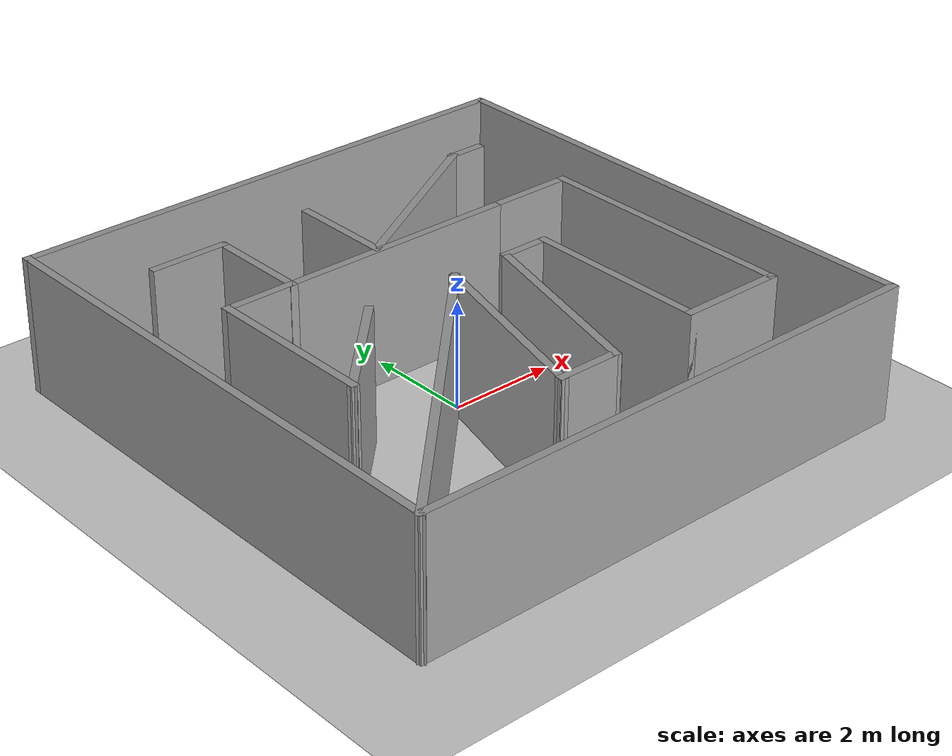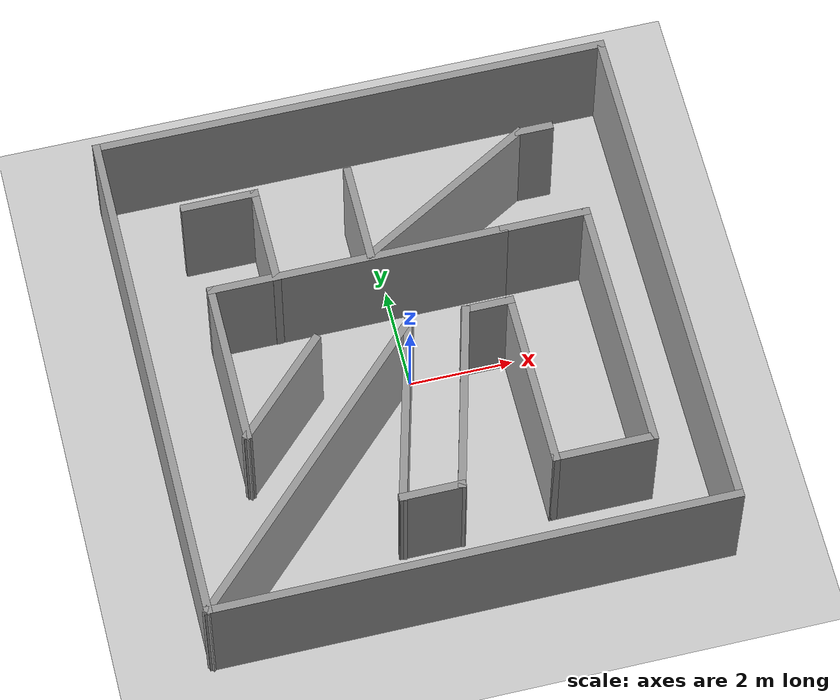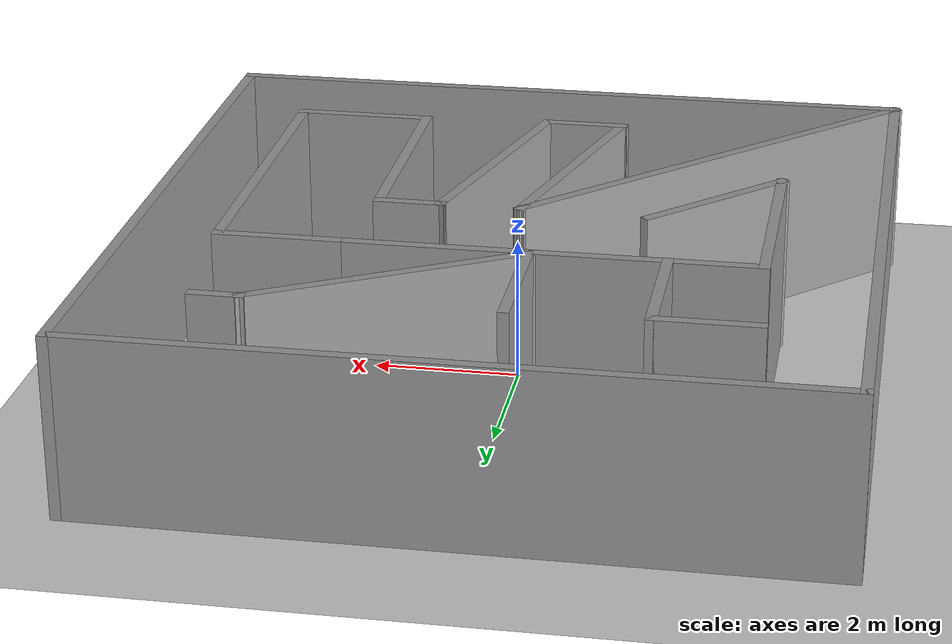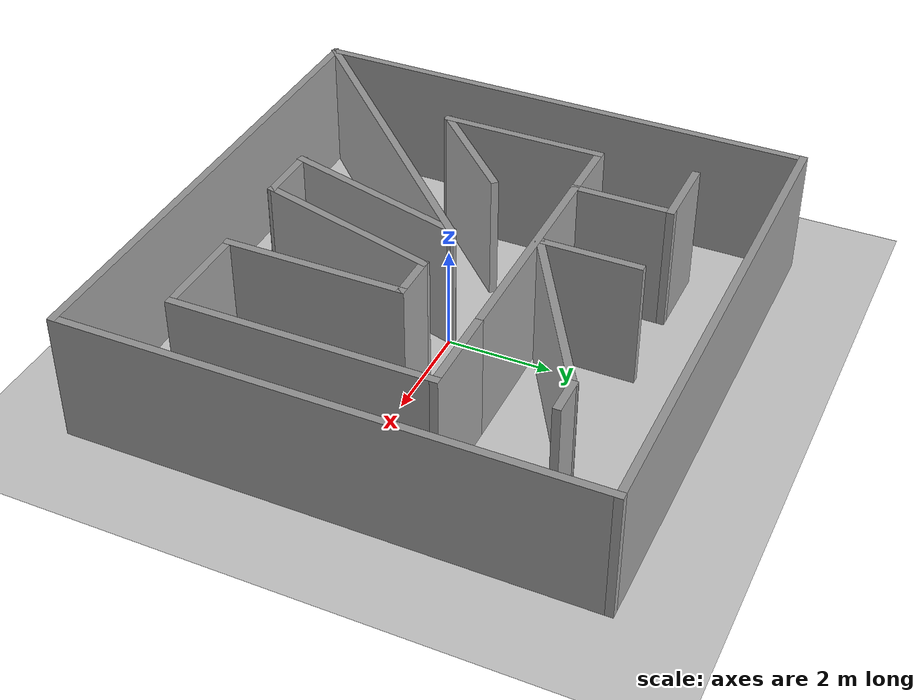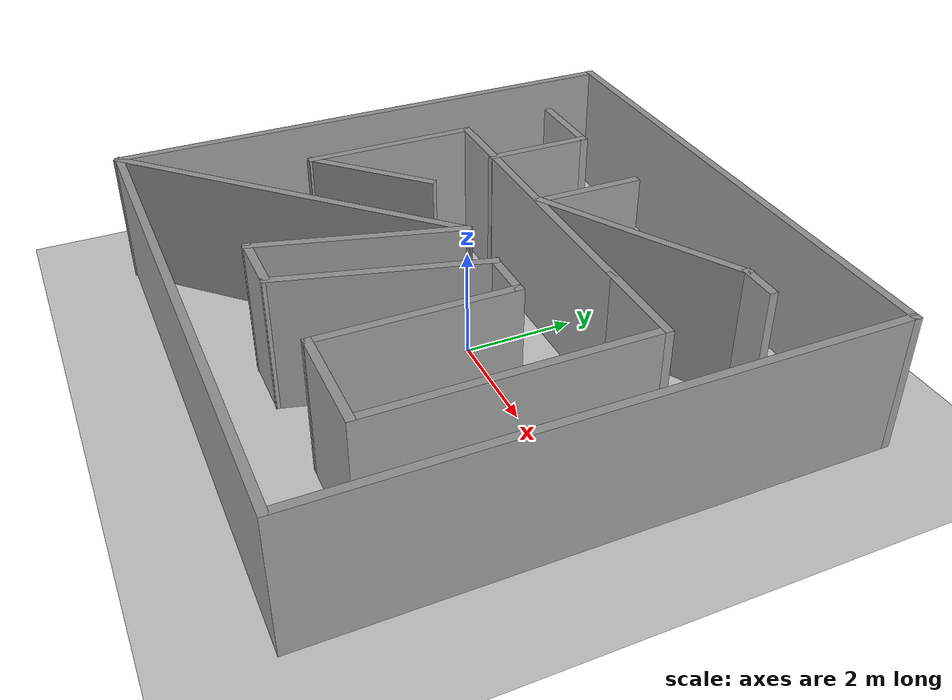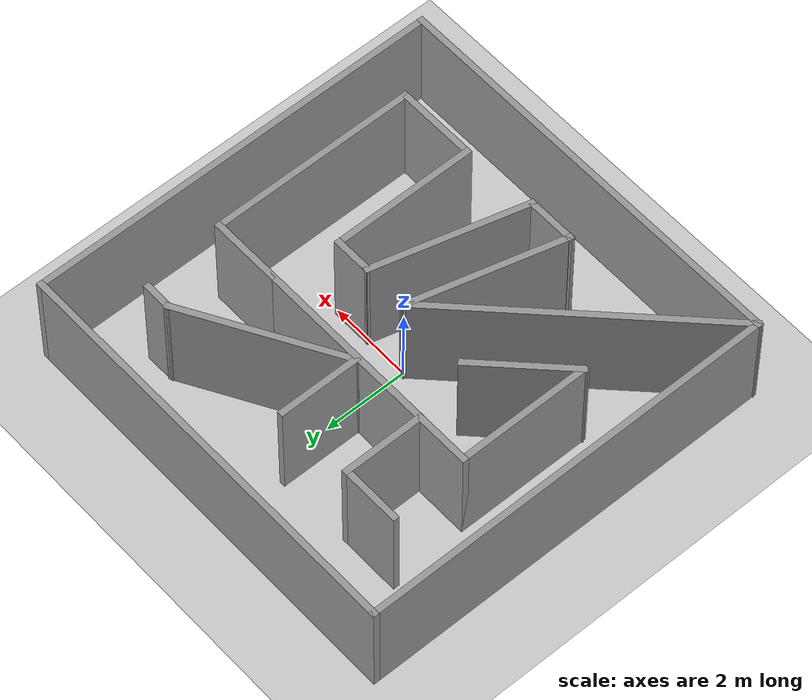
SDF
<sdf version="1.7">
 <world name="default">
  <light name="sun" type="directional">
   <pose>0 0 10 0 -0 0</pose>
   <diffuse>0.8 0.8 0.8 1</diffuse>
   <specular>0.2 0.2 0.2 1</specular>
   <attenuation>
    <range>1000</range>
    <constant>0.9</constant>
    <linear>0.01</linear>
    <quadratic>0.001</quadratic>
   </attenuation>
   <direction>-0.5 0.1 -0.9</direction>
   <spot><inner_angle>0</inner_angle><outer_angle>0</outer_angle><falloff>0</falloff></spot>
  </light>
  <model name="ground_plane">
   <static>1</static>
   <link name="link">
    <collision name="collision">
     <geometry><plane><normal>0 0 1</normal><size>100 100</size></plane></geometry>
     <surface>
      <contact><collide_bitmask>65535</collide_bitmask></contact>
      <friction><ode><mu>100</mu><mu2>50</mu2></ode></friction>
     </surface>
    </collision>
    <visual name="visual">
     <cast_shadows>0</cast_shadows>
     <geometry><plane><normal>0 0 1</normal><size>100 100</size></plane></geometry>
     <material>
      <script><uri>file://media/materials/scripts/gazebo.material</uri><name>Gazebo/Grey</name></script>
     </material>
    </visual>
   </link>
  </model>
  <gravity>0 0 -9.8</gravity>
  <magnetic_field>6e-06 2.3e-05 -4.2e-05</magnetic_field>
  <atmosphere type="adiabatic"/>
  <physics type="ode">
   <max_step_size>0.001</max_step_size>
   <real_time_factor>1</real_time_factor>
   <real_time_update_rate>1000</real_time_update_rate>
  </physics>
  <scene><ambient>0.4 0.4 0.4 1</ambient><background>0.7 0.7 0.7 1</background><shadows>1</shadows></scene>
  <spherical_coordinates>
   <surface_model>EARTH_WGS84</surface_model>
   <latitude_deg>0</latitude_deg>
   <longitude_deg>0</longitude_deg>
   <elevation>0</elevation>
   <heading_deg>0</heading_deg>
  </spherical_coordinates>
  <model name="krishna">
   <pose>0.025832 0.074394 0 0 -0 0</pose>
   <link name="Wall_0">
    <collision name="Wall_0_Collision">
     <geometry><box><size>10 0.15 2.5</size></box></geometry>
     <pose>0 0 1.25 0 -0 0</pose>
    </collision>
    <visual name="Wall_0_Visual">
     <pose>0 0 1.25 0 -0 0</pose>
     <geometry><box><size>10 0.15 2.5</size></box></geometry>
     <material>
      <script><uri>file://media/materials/scripts/gazebo.material</uri><name>Gazebo/Grey</name></script>
      <ambient>1 1 1 1</ambient>
     </material>
     <meta><layer>0</layer></meta>
    </visual>
    <pose>0.015533 -4.90947 0 0 -0 0</pose>
   </link>
   <link name="Wall_1">
    <collision name="Wall_1_Collision">
     <geometry><box><size>10 0.15 2.5</size></box></geometry>
     <pose>0 0 1.25 0 -0 0</pose>
    </collision>
    <visual name="Wall_1_Visual">
     <pose>0 0 1.25 0 -0 0</pose>
     <geometry><box><size>10 0.15 2.5</size></box></geometry>
     <material>
      <script><uri>file://media/materials/scripts/gazebo.material</uri><name>Gazebo/Grey</name></script>
      <ambient>1 1 1 1</ambient>
     </material>
     <meta><layer>0</layer></meta>
    </visual>
    <pose>4.94053 0.015533 0 0 -0 1.5708</pose>
   </link>
   <link name="Wall_10">
    <collision name="Wall_10_Collision">
     <geometry><box><size>3.5 0.15 2.5</size></box></geometry>
     <pose>0 0 1.25 0 -0 0</pose>
    </collision>
    <visual name="Wall_10_Visual">
     <pose>0 0 1.25 0 -0 0</pose>
     <geometry><box><size>3.5 0.15 2.5</size></box></geometry>
     <material>
      <script><uri>file://media/materials/scripts/gazebo.material</uri><name>Gazebo/Grey</name></script>
      <ambient>1 1 1 1</ambient>
     </material>
     <meta><layer>0</layer></meta>
    </visual>
    <pose>1.88421 -1.74079 0 0 -0 -1.5708</pose>
   </link>
   <link name="Wall_11">
    <collision name="Wall_11_Collision">
     <geometry><box><size>2 0.15 2.5</size></box></geometry>
     <pose>0 0 1.25 0 -0 0</pose>
    </collision>
    <visual name="Wall_11_Visual">
     <pose>0 0 1.25 0 -0 0</pose>
     <geometry><box><size>2 0.15 2.5</size></box></geometry>
     <material>
      <script><uri>file://media/materials/scripts/gazebo.material</uri><name>Gazebo/Grey</name></script>
      <ambient>1 1 1 1</ambient>
     </material>
     <meta><layer>0</layer></meta>
    </visual>
    <pose>2.80921 -3.41579 0 0 -0 0</pose>
   </link>
   <link name="Wall_12">
    <collision name="Wall_12_Collision">
     <geometry><box><size>5 0.15 2.5</size></box></geometry>
     <pose>0 0 1.25 0 -0 0</pose>
    </collision>
    <visual name="Wall_12_Visual">
     <pose>0 0 1.25 0 -0 0</pose>
     <geometry><box><size>5 0.15 2.5</size></box></geometry>
     <material>
      <script><uri>file://media/materials/scripts/gazebo.material</uri><name>Gazebo/Grey</name></script>
      <ambient>1 1 1 1</ambient>
     </material>
     <meta><layer>0</layer></meta>
    </visual>
    <pose>3.73421 -0.990785 0 0 -0 1.5708</pose>
   </link>
   <link name="Wall_13">
    <collision name="Wall_13_Collision">
     <geometry><box><size>1.75 0.15 2.5</size></box></geometry>
     <pose>0 0 1.25 0 -0 0</pose>
    </collision>
    <visual name="Wall_13_Visual">
     <pose>0 0 1.25 0 -0 0</pose>
     <geometry><box><size>1.75 0.15 2.5</size></box></geometry>
     <material>
      <script><uri>file://media/materials/scripts/gazebo.material</uri><name>Gazebo/Grey</name></script>
      <ambient>1 1 1 1</ambient>
     </material>
     <meta><layer>0</layer></meta>
    </visual>
    <pose>2.93421 1.43422 0 0 -0 3.14159</pose>
   </link>
   <link name="Wall_14">
    <collision name="Wall_14_Collision">
     <geometry><box><size>5.75 0.15 2.5</size></box></geometry>
     <pose>0 0 1.25 0 -0 0</pose>
    </collision>
    <visual name="Wall_14_Visual">
     <pose>0 0 1.25 0 -0 0</pose>
     <geometry><box><size>5.75 0.15 2.5</size></box></geometry>
     <material>
      <script><uri>file://media/materials/scripts/gazebo.material</uri><name>Gazebo/Grey</name></script>
      <ambient>1 1 1 1</ambient>
     </material>
     <meta><layer>0</layer></meta>
    </visual>
    <pose>-0.665786 1.43422 0 0 -0 3.14159</pose>
   </link>
   <link name="Wall_15">
    <collision name="Wall_15_Collision">
     <geometry><box><size>3.25 0.15 2.5</size></box></geometry>
     <pose>0 0 1.25 0 -0 0</pose>
    </collision>
    <visual name="Wall_15_Visual">
     <pose>0 0 1.25 0 -0 0</pose>
     <geometry><box><size>3.25 0.15 2.5</size></box></geometry>
     <material>
      <script><uri>file://media/materials/scripts/gazebo.material</uri><name>Gazebo/Grey</name></script>
      <ambient>1 1 1 1</ambient>
     </material>
     <meta><layer>0</layer></meta>
    </visual>
    <pose>-3.46579 -0.115785 0 0 -0 -1.5708</pose>
   </link>
   <link name="Wall_16">
    <collision name="Wall_16_Collision">
     <geometry><box><size>2.5 0.15 2.5</size></box></geometry>
     <pose>0 0 1.25 0 -0 0</pose>
    </collision>
    <visual name="Wall_16_Visual">
     <pose>0 0 1.25 0 -0 0</pose>
     <geometry><box><size>2.5 0.15 2.5</size></box></geometry>
     <material>
      <script><uri>file://media/materials/scripts/gazebo.material</uri><name>Gazebo/Grey</name></script>
      <ambient>1 1 1 1</ambient>
     </material>
     <meta><layer>0</layer></meta>
    </visual>
    <pose>-2.63494 -0.834935 0 0 -0 0.785398</pose>
   </link>
   <link name="Wall_18">
    <collision name="Wall_18_Collision">
     <geometry><box><size>2 0.15 2.5</size></box></geometry>
     <pose>0 0 1.25 0 -0 0</pose>
    </collision>
    <visual name="Wall_18_Visual">
     <pose>0 0 1.25 0 -0 0</pose>
     <geometry><box><size>2 0.15 2.5</size></box></geometry>
     <material>
      <script><uri>file://media/materials/scripts/gazebo.material</uri><name>Gazebo/Grey</name></script>
      <ambient>1 1 1 1</ambient>
     </material>
     <meta><layer>0</layer></meta>
    </visual>
    <pose>-2.22219 2.35193 0 0 -0 1.5708</pose>
   </link>
   <link name="Wall_19">
    <collision name="Wall_19_Collision">
     <geometry><box><size>1.5 0.15 2.5</size></box></geometry>
     <pose>0 0 1.25 0 -0 0</pose>
    </collision>
    <visual name="Wall_19_Visual">
     <pose>0 0 1.25 0 -0 0</pose>
     <geometry><box><size>1.5 0.15 2.5</size></box></geometry>
     <material>
      <script><uri>file://media/materials/scripts/gazebo.material</uri><name>Gazebo/Grey</name></script>
      <ambient>1 1 1 1</ambient>
     </material>
     <meta><layer>0</layer></meta>
    </visual>
    <pose>-2.89718 3.27693 0 0 -0 3.14159</pose>
   </link>
   <link name="Wall_2">
    <collision name="Wall_2_Collision">
     <geometry><box><size>10 0.15 2.5</size></box></geometry>
     <pose>0 0 1.25 0 -0 0</pose>
    </collision>
    <visual name="Wall_2_Visual">
     <pose>0 0 1.25 0 -0 0</pose>
     <geometry><box><size>10 0.15 2.5</size></box></geometry>
     <material>
      <script><uri>file://media/materials/scripts/gazebo.material</uri><name>Gazebo/Grey</name></script>
      <ambient>1 1 1 1</ambient>
     </material>
     <meta><layer>0</layer></meta>
    </visual>
    <pose>0.015533 4.94053 0 0 -0 3.14159</pose>
   </link>
   <link name="Wall_21">
    <collision name="Wall_21_Collision">
     <geometry><box><size>2 0.15 2.5</size></box></geometry>
     <pose>0 0 1.25 0 -0 0</pose>
    </collision>
    <visual name="Wall_21_Visual">
     <pose>0 0 1.25 0 -0 0</pose>
     <geometry><box><size>2 0.15 2.5</size></box></geometry>
     <material>
      <script><uri>file://media/materials/scripts/gazebo.material</uri><name>Gazebo/Grey</name></script>
      <ambient>1 1 1 1</ambient>
     </material>
     <meta><layer>0</layer></meta>
    </visual>
    <pose>-0.411963 2.41272 0 0 -0 -1.5708</pose>
   </link>
   <link name="Wall_22">
    <collision name="Wall_22_Collision">
     <geometry><box><size>4 0.15 2.5</size></box></geometry>
     <pose>0 0 1.25 0 -0 0</pose>
    </collision>
    <visual name="Wall_22_Visual">
     <pose>0 0 1.25 0 -0 0</pose>
     <geometry><box><size>4 0.15 2.5</size></box></geometry>
     <material>
      <script><uri>file://media/materials/scripts/gazebo.material</uri><name>Gazebo/Grey</name></script>
      <ambient>1 1 1 1</ambient>
     </material>
     <meta><layer>0</layer></meta>
    </visual>
    <pose>1.25514 2.45022 0 0 -0 0.523599</pose>
   </link>
   <link name="Wall_23">
    <collision name="Wall_23_Collision">
     <geometry><box><size>0.75 0.15 2.5</size></box></geometry>
     <pose>0 0 1.25 0 -0 0</pose>
    </collision>
    <visual name="Wall_23_Visual">
     <pose>0 0 1.25 0 -0 0</pose>
     <geometry><box><size>0.75 0.15 2.5</size></box></geometry>
     <material>
      <script><uri>file://media/materials/scripts/gazebo.material</uri><name>Gazebo/Grey</name></script>
      <ambient>1 1 1 1</ambient>
     </material>
     <meta><layer>0</layer></meta>
    </visual>
    <pose>3.22223 3.41272 0 0 -0 0</pose>
   </link>
   <link name="Wall_3">
    <collision name="Wall_3_Collision">
     <geometry><box><size>10 0.15 2.5</size></box></geometry>
     <pose>0 0 1.25 0 -0 0</pose>
    </collision>
    <visual name="Wall_3_Visual">
     <pose>0 0 1.25 0 -0 0</pose>
     <geometry><box><size>10 0.15 2.5</size></box></geometry>
     <material>
      <script><uri>file://media/materials/scripts/gazebo.material</uri><name>Gazebo/Grey</name></script>
      <ambient>1 1 1 1</ambient>
     </material>
     <meta><layer>0</layer></meta>
    </visual>
    <pose>-4.90947 0.015533 0 0 -0 -1.5708</pose>
   </link>
   <link name="Wall_5">
    <collision name="Wall_5_Collision">
     <geometry><box><size>7 0.15 2.5</size></box></geometry>
     <pose>0 0 1.25 0 -0 0</pose>
    </collision>
    <visual name="Wall_5_Visual">
     <pose>0 0 1.25 0 -0 0</pose>
     <geometry><box><size>7 0.15 2.5</size></box></geometry>
     <material>
      <script><uri>file://media/materials/scripts/gazebo.material</uri><name>Gazebo/Grey</name></script>
      <ambient>1 1 1 1</ambient>
     </material>
     <meta><layer>0</layer></meta>
    </visual>
    <pose>-2.48763 -2.48763 0 0 -0 0.785398</pose>
   </link>
   <link name="Wall_6">
    <collision name="Wall_6_Collision">
     <geometry><box><size>3.75 0.15 2.5</size></box></geometry>
     <pose>0 0 1.25 0 -0 0</pose>
    </collision>
    <visual name="Wall_6_Visual">
     <pose>0 0 1.25 0 -0 0</pose>
     <geometry><box><size>3.75 0.15 2.5</size></box></geometry>
     <material>
      <script><uri>file://media/materials/scripts/gazebo.material</uri><name>Gazebo/Grey</name></script>
      <ambient>1 1 1 1</ambient>
     </material>
     <meta><layer>0</layer></meta>
    </visual>
    <pose>-0.53166 -1.80445 0 0 -0 -1.8326</pose>
   </link>
   <link name="Wall_7">
    <collision name="Wall_7_Collision">
     <geometry><box><size>1.25 0.15 2.5</size></box></geometry>
     <pose>0 0 1.25 0 -0 0</pose>
    </collision>
    <visual name="Wall_7_Visual">
     <pose>0 0 1.25 0 -0 0</pose>
     <geometry><box><size>1.25 0.15 2.5</size></box></geometry>
     <material>
      <script><uri>file://media/materials/scripts/gazebo.material</uri><name>Gazebo/Grey</name></script>
      <ambient>1 1 1 1</ambient>
     </material>
     <meta><layer>0</layer></meta>
    </visual>
    <pose>-0.447534 -3.54312 0 0 -0 0</pose>
   </link>
   <link name="Wall_8">
    <collision name="Wall_8_Collision">
     <geometry><box><size>3.75 0.15 2.5</size></box></geometry>
     <pose>0 0 1.25 0 -0 0</pose>
    </collision>
    <visual name="Wall_8_Visual">
     <pose>0 0 1.25 0 -0 0</pose>
     <geometry><box><size>3.75 0.15 2.5</size></box></geometry>
     <material>
      <script><uri>file://media/materials/scripts/gazebo.material</uri><name>Gazebo/Grey</name></script>
      <ambient>1 1 1 1</ambient>
     </material>
     <meta><layer>0</layer></meta>
    </visual>
    <pose>0.56834 -1.80445 0 0 -0 1.309</pose>
   </link>
   <link name="Wall_9">
    <collision name="Wall_9_Collision">
     <geometry><box><size>1 0.15 2.5</size></box></geometry>
     <pose>0 0 1.25 0 -0 0</pose>
    </collision>
    <visual name="Wall_9_Visual">
     <pose>0 0 1.25 0 -0 0</pose>
     <geometry><box><size>1 0.15 2.5</size></box></geometry>
     <material>
      <script><uri>file://media/materials/scripts/gazebo.material</uri><name>Gazebo/Grey</name></script>
      <ambient>1 1 1 1</ambient>
     </material>
     <meta><layer>0</layer></meta>
    </visual>
    <pose>1.45921 -0.065785 0 0 -0 0</pose>
   </link>
   <static>1</static>
  </model>
 </world>
</sdf>
